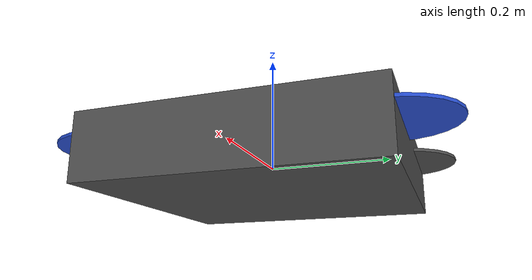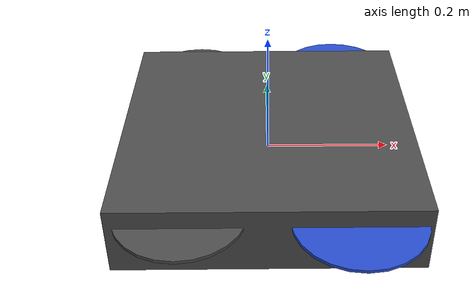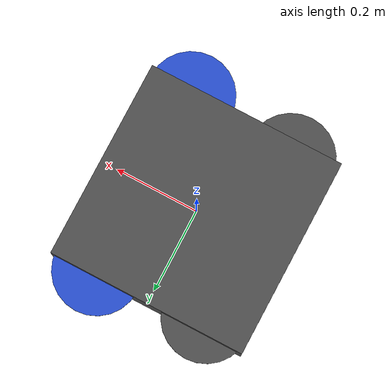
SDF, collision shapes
<?xml version='1.0'?>
<sdf version='1.5'>
  <model name='iris_fpv_cam'>

    <include>
      <uri>model://iris</uri>
    </include>

    <include>
      <uri>model://fpv_cam</uri>
      <pose>0 0 0 0 0 0</pose>
    </include>
    <joint name="fpv_cam_joint" type="fixed">
      <child>fpv_cam::link</child>
      <parent>iris::base_link</parent>
      <axis>
        <xyz>0 0 1</xyz>
        <limit>
          <upper>0</upper>
          <lower>0</lower>
        </limit>
      </axis>
    </joint>

  </model>
</sdf>

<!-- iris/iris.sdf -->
<sdf version='1.5'>
  <model name='iris'>
    <link name='base_link'>
      <pose>0 0 0 0 -0 0</pose>
      <inertial>
        <pose>0 0 0 0 -0 0</pose>
        <mass>1.5</mass>
        <inertia>
          <ixx>0.0347563</ixx>
          <ixy>0</ixy>
          <ixz>0</ixz>
          <iyy>0.0458929</iyy>
          <iyz>0</iyz>
          <izz>0.0977</izz>
        </inertia>
      </inertial>
      <collision name='base_link_collision'>
        <pose>0 0 0 0 -0 0</pose>
        <geometry>
          <box>
            <size>0.47 0.47 0.11</size>
          </box>
        </geometry>
        <surface>
          <contact>
            <ode/>
          </contact>
          <friction>
            <ode/>
          </friction>
        </surface>
      </collision>
      <visual name='base_link_visual'>
        <pose>0 0 0 0 -0 0</pose>
        <geometry>
          <mesh>
            <scale>1 1 1</scale>
            <uri>model://rotors_description/meshes/iris.dae</uri>
          </mesh>
        </geometry>
        <material>
          <script>
            <name>Gazebo/DarkGrey</name>
            <uri>__default__</uri>
          </script>
        </material>
      </visual>
      <gravity>1</gravity>
      <velocity_decay/>
      <self_collide>0</self_collide>
    </link>
    <link name='iris/imu_link'>
      <pose>0 0 0 0 -0 0</pose>
      <inertial>
        <pose>0 0 0 0 -0 0</pose>
        <mass>0.015</mass>
        <inertia>
          <ixx>1e-05</ixx>
          <ixy>0</ixy>
          <ixz>0</ixz>
          <iyy>1e-05</iyy>
          <iyz>0</iyz>
          <izz>1e-05</izz>
        </inertia>
      </inertial>
    </link>
    <joint name='iris/imu_joint' type='revolute'>
      <child>iris/imu_link</child>
      <parent>base_link</parent>
      <axis>
        <xyz>1 0 0</xyz>
        <limit>
          <lower>0</lower>
          <upper>0</upper>
          <effort>0</effort>
          <velocity>0</velocity>
        </limit>
        <dynamics>
          <spring_reference>0</spring_reference>
          <spring_stiffness>0</spring_stiffness>
        </dynamics>
        <use_parent_model_frame>1</use_parent_model_frame>
      </axis>
    </joint>
    <link name='rotor_0'>
      <pose>0.13 -0.22 0.023 0 -0 0</pose>
      <inertial>
        <pose>0 0 0 0 -0 0</pose>
        <mass>0.005</mass>
        <inertia>
          <ixx>9.75e-07</ixx>
          <ixy>0</ixy>
          <ixz>0</ixz>
          <iyy>0.000166704</iyy>
          <iyz>0</iyz>
          <izz>0.000167604</izz>
        </inertia>
      </inertial>
      <collision name='rotor_0_collision'>
        <pose>0 0 0 0 -0 0</pose>
        <geometry>
          <cylinder>
            <length>0.005</length>
            <radius>0.1</radius>
          </cylinder>
        </geometry>
        <surface>
          <contact>
            <ode/>
          </contact>
          <friction>
            <ode/>
          </friction>
        </surface>
      </collision>
      <visual name='rotor_0_visual'>
        <pose>0 0 0 0 -0 0</pose>
        <geometry>
          <mesh>
            <scale>1 1 1</scale>
            <uri>model://rotors_description/meshes/iris_prop_ccw.dae</uri>
          </mesh>
        </geometry>
        <material>
          <script>
            <name>Gazebo/Blue</name>
            <uri>__default__</uri>
          </script>
        </material>
      </visual>
      <gravity>1</gravity>
      <velocity_decay/>
      <self_collide>0</self_collide>
    </link>
    <joint name='rotor_0_joint' type='revolute'>
      <child>rotor_0</child>
      <parent>base_link</parent>
      <axis>
        <xyz>0 0 1</xyz>
        <limit>
          <lower>-1e+16</lower>
          <upper>1e+16</upper>
        </limit>
        <dynamics>
          <spring_reference>0</spring_reference>
          <spring_stiffness>0</spring_stiffness>
        </dynamics>
        <use_parent_model_frame>1</use_parent_model_frame>
      </axis>
    </joint>
    <link name='rotor_1'>
      <pose>-0.13 0.2 0.023 0 -0 0</pose>
      <inertial>
        <pose>0 0 0 0 -0 0</pose>
        <mass>0.005</mass>
        <inertia>
          <ixx>9.75e-07</ixx>
          <ixy>0</ixy>
          <ixz>0</ixz>
          <iyy>0.000166704</iyy>
          <iyz>0</iyz>
          <izz>0.000167604</izz>
        </inertia>
      </inertial>
      <collision name='rotor_1_collision'>
        <pose>0 0 0 0 -0 0</pose>
        <geometry>
          <cylinder>
            <length>0.005</length>
            <radius>0.1</radius>
          </cylinder>
        </geometry>
        <surface>
          <contact>
            <ode/>
          </contact>
          <friction>
            <ode/>
          </friction>
        </surface>
      </collision>
      <visual name='rotor_1_visual'>
        <pose>0 0 0 0 -0 0</pose>
        <geometry>
          <mesh>
            <scale>1 1 1</scale>
            <uri>model://rotors_description/meshes/iris_prop_ccw.dae</uri>
          </mesh>
        </geometry>
        <material>
          <script>
            <name>Gazebo/DarkGrey</name>
            <uri>__default__</uri>
          </script>
        </material>
      </visual>
      <gravity>1</gravity>
      <velocity_decay/>
      <self_collide>0</self_collide>
    </link>
    <joint name='rotor_1_joint' type='revolute'>
      <child>rotor_1</child>
      <parent>base_link</parent>
      <axis>
        <xyz>0 0 1</xyz>
        <limit>
          <lower>-1e+16</lower>
          <upper>1e+16</upper>
        </limit>
        <dynamics>
          <spring_reference>0</spring_reference>
          <spring_stiffness>0</spring_stiffness>
        </dynamics>
        <use_parent_model_frame>1</use_parent_model_frame>
      </axis>
    </joint>
    <link name='rotor_2'>
      <pose>0.13 0.22 0.023 0 -0 0</pose>
      <inertial>
        <pose>0 0 0 0 -0 0</pose>
        <mass>0.005</mass>
        <inertia>
          <ixx>9.75e-07</ixx>
          <ixy>0</ixy>
          <ixz>0</ixz>
          <iyy>0.000166704</iyy>
          <iyz>0</iyz>
          <izz>0.000167604</izz>
        </inertia>
      </inertial>
      <collision name='rotor_2_collision'>
        <pose>0 0 0 0 -0 0</pose>
        <geometry>
          <cylinder>
            <length>0.005</length>
            <radius>0.1</radius>
          </cylinder>
        </geometry>
        <surface>
          <contact>
            <ode/>
          </contact>
          <friction>
            <ode/>
          </friction>
        </surface>
      </collision>
      <visual name='rotor_2_visual'>
        <pose>0 0 0 0 -0 0</pose>
        <geometry>
          <mesh>
            <scale>1 1 1</scale>
            <uri>model://rotors_description/meshes/iris_prop_cw.dae</uri>
          </mesh>
        </geometry>
        <material>
          <script>
            <name>Gazebo/Blue</name>
            <uri>__default__</uri>
          </script>
        </material>
      </visual>
      <gravity>1</gravity>
      <velocity_decay/>
      <self_collide>0</self_collide>
    </link>
    <joint name='rotor_2_joint' type='revolute'>
      <child>rotor_2</child>
      <parent>base_link</parent>
      <axis>
        <xyz>0 0 1</xyz>
        <limit>
          <lower>-1e+16</lower>
          <upper>1e+16</upper>
        </limit>
        <dynamics>
          <spring_reference>0</spring_reference>
          <spring_stiffness>0</spring_stiffness>
        </dynamics>
        <use_parent_model_frame>1</use_parent_model_frame>
      </axis>
    </joint>
    <link name='rotor_3'>
      <pose>-0.13 -0.2 0.023 0 -0 0</pose>
      <inertial>
        <pose>0 0 0 0 -0 0</pose>
        <mass>0.005</mass>
        <inertia>
          <ixx>9.75e-07</ixx>
          <ixy>0</ixy>
          <ixz>0</ixz>
          <iyy>0.000166704</iyy>
          <iyz>0</iyz>
          <izz>0.000167604</izz>
        </inertia>
      </inertial>
      <collision name='rotor_3_collision'>
        <pose>0 0 0 0 -0 0</pose>
        <geometry>
          <cylinder>
            <length>0.005</length>
            <radius>0.1</radius>
          </cylinder>
        </geometry>
        <surface>
          <contact>
            <ode/>
          </contact>
          <friction>
            <ode/>
          </friction>
        </surface>
      </collision>
      <visual name='rotor_3_visual'>
        <pose>0 0 0 0 -0 0</pose>
        <geometry>
          <mesh>
            <scale>1 1 1</scale>
            <uri>model://rotors_description/meshes/iris_prop_cw.dae</uri>
          </mesh>
        </geometry>
        <material>
          <script>
            <name>Gazebo/DarkGrey</name>
            <uri>__default__</uri>
          </script>
        </material>
      </visual>
      <gravity>1</gravity>
      <velocity_decay/>
      <self_collide>0</self_collide>
    </link>
    <joint name='rotor_3_joint' type='revolute'>
      <child>rotor_3</child>
      <parent>base_link</parent>
      <axis>
        <xyz>0 0 1</xyz>
        <limit>
          <lower>-1e+16</lower>
          <upper>1e+16</upper>
        </limit>
        <dynamics>
          <spring_reference>0</spring_reference>
          <spring_stiffness>0</spring_stiffness>
        </dynamics>
        <use_parent_model_frame>1</use_parent_model_frame>
      </axis>
    </joint>
    <plugin name='rosbag' filename='librotors_gazebo_multirotor_base_plugin.so'>
      <linkName>base_link</linkName>
      <motorPubTopic>~/motors</motorPubTopic>
      <rotorVelocitySlowdownSim>10</rotorVelocitySlowdownSim>
    </plugin>
    <plugin name='front_right_motor_model' filename='librotors_gazebo_motor_model.so'>
      <jointName>rotor_0_joint</jointName>
      <linkName>rotor_0</linkName>
      <turningDirection>ccw</turningDirection>
      <timeConstantUp>0.0125</timeConstantUp>
      <timeConstantDown>0.025</timeConstantDown>
      <maxRotVelocity>838</maxRotVelocity>
      <motorConstant>8.54858e-06</motorConstant>
      <momentConstant>0.16</momentConstant>
      <motorNumber>0</motorNumber>
      <rotorDragCoefficient>8.06428e-05</rotorDragCoefficient>
      <rollingMomentCoefficient>1e-06</rollingMomentCoefficient>
      <commandSubTopic>~/command/motor_speed</commandSubTopic>
      <motorSpeedPubTopic>~/motor_speed/0</motorSpeedPubTopic>
      <rotorVelocitySlowdownSim>10</rotorVelocitySlowdownSim>
    </plugin>
    <plugin name='back_left_motor_model' filename='librotors_gazebo_motor_model.so'>
      <jointName>rotor_1_joint</jointName>
      <linkName>rotor_1</linkName>
      <turningDirection>ccw</turningDirection>
      <timeConstantUp>0.0125</timeConstantUp>
      <timeConstantDown>0.025</timeConstantDown>
      <maxRotVelocity>838</maxRotVelocity>
      <motorConstant>8.54858e-06</motorConstant>
      <momentConstant>0.16</momentConstant>
      <motorNumber>1</motorNumber>
      <rotorDragCoefficient>8.06428e-05</rotorDragCoefficient>
      <rollingMomentCoefficient>1e-06</rollingMomentCoefficient>
      <commandSubTopic>~/command/motor_speed</commandSubTopic>
      <motorSpeedPubTopic>~/motor_speed/1</motorSpeedPubTopic>
      <rotorVelocitySlowdownSim>10</rotorVelocitySlowdownSim>
    </plugin>
    <plugin name='front_left_motor_model' filename='librotors_gazebo_motor_model.so'>
      <jointName>rotor_2_joint</jointName>
      <linkName>rotor_2</linkName>
      <turningDirection>cw</turningDirection>
      <timeConstantUp>0.0125</timeConstantUp>
      <timeConstantDown>0.025</timeConstantDown>
      <maxRotVelocity>838</maxRotVelocity>
      <motorConstant>8.54858e-06</motorConstant>
      <momentConstant>0.16</momentConstant>
      <motorNumber>2</motorNumber>
      <rotorDragCoefficient>8.06428e-05</rotorDragCoefficient>
      <rollingMomentCoefficient>1e-06</rollingMomentCoefficient>
      <commandSubTopic>~/command/motor_speed</commandSubTopic>
      <motorSpeedPubTopic>~/motor_speed/2</motorSpeedPubTopic>
      <rotorVelocitySlowdownSim>10</rotorVelocitySlowdownSim>
    </plugin>
    <plugin name='back_right_motor_model' filename='librotors_gazebo_motor_model.so'>
      <jointName>rotor_3_joint</jointName>
      <linkName>rotor_3</linkName>
      <turningDirection>cw</turningDirection>
      <timeConstantUp>0.0125</timeConstantUp>
      <timeConstantDown>0.025</timeConstantDown>
      <maxRotVelocity>838</maxRotVelocity>
      <motorConstant>8.54858e-06</motorConstant>
      <momentConstant>0.16</momentConstant>
      <motorNumber>3</motorNumber>
      <rotorDragCoefficient>8.06428e-05</rotorDragCoefficient>
      <rollingMomentCoefficient>1e-06</rollingMomentCoefficient>
      <commandSubTopic>~/command/motor_speed</commandSubTopic>
      <motorSpeedPubTopic>~/motor_speed/3</motorSpeedPubTopic>
      <rotorVelocitySlowdownSim>10</rotorVelocitySlowdownSim>
    </plugin>
    <plugin name='mavlink_interface' filename='librotors_gazebo_mavlink_interface.so'>
      <imuSubTopic>~/imu</imuSubTopic>
      <motorSpeedCommandPubTopic>~/command/motor_speed</motorSpeedCommandPubTopic>
      <udpPort>14560</udpPort>
      <udpPort2>14556</udpPort2>
      <portStep>10</portStep>
    </plugin>
    <static>0</static>
    <plugin name='rotors_gazebo_imu_plugin' filename='librotors_gazebo_imu_plugin.so'>
      <linkName>iris/imu_link</linkName>
      <imuTopic>~/imu</imuTopic>
      <gyroscopeNoiseDensity>0.0003394</gyroscopeNoiseDensity>
      <gyroscopeRandomWalk>3.8785e-05</gyroscopeRandomWalk>
      <gyroscopeBiasCorrelationTime>1000.0</gyroscopeBiasCorrelationTime>
      <gyroscopeTurnOnBiasSigma>0.0087</gyroscopeTurnOnBiasSigma>
      <accelerometerNoiseDensity>0.004</accelerometerNoiseDensity>
      <accelerometerRandomWalk>0.006</accelerometerRandomWalk>
      <accelerometerBiasCorrelationTime>300.0</accelerometerBiasCorrelationTime>
      <accelerometerTurnOnBiasSigma>0.196</accelerometerTurnOnBiasSigma>
    </plugin>
  </model>
</sdf>

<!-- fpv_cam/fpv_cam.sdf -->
<sdf version='1.6'>
    <model name='fpv_cam'>
    <pose>-0.158979 -0.04405 0.045074 0 -0 0</pose>
      <link name='link'>
        <inertial>
          <mass>0.015</mass>
          <inertia>
            <ixx>4.15e-6</ixx>
          <ixy>0</ixy>
          <ixz>0</ixz>
          <iyy>2.407e-6</iyy>
          <iyz>0</iyz>
          <izz>2.407e-6</izz>
          </inertia>
        </inertial>
        <collision name='collision'>
          <geometry>
            <box>
              <size>0.01 0.01 0.01</size>
            </box>
          </geometry>
          <max_contacts>10</max_contacts>
          <surface>
            <contact>
              <ode/>
            </contact>
            <bounce/>
            <friction>
              <ode/>
            </friction>
          </surface>
        </collision>
        <visual name='visual'>
          <geometry>
            <box>
              <size>0.01 0.01 0.01</size>
            </box>
          </geometry>
        </visual>
        <sensor name='camera' type='camera'>
          <camera name='__default__'>
            <horizontal_fov>1.047</horizontal_fov>
            <image>
              <width>320</width>
              <height>240</height>
            </image>
            <clip>
              <near>0.1</near>
              <far>100</far>
            </clip>
            <lens>
              <type>custom</type>
              <custom_function>
                <c1>1.05</c1>
                <c2>4</c2>
                <f>1</f>
                <fun>tan</fun>
              </custom_function>
              <scale_to_hfov>1</scale_to_hfov>
              <cutoff_angle>3.1415</cutoff_angle>
              <env_texture_size>1080</env_texture_size>
            </lens>
          </camera>
          <always_on>1</always_on>
          <update_rate>30</update_rate>
          <visualize>1</visualize>
          <plugin name='camera_plugin' filename='libgazebo_ros_camera.so'>
              <robotNamespace></robotNamespace>
            <alwaysOn>true</alwaysOn>
            <imageTopicName>image_raw</imageTopicName>
            <cameraInfoTopicName>camera_info</cameraInfoTopicName>
            <updateRate>30.0</updateRate>
            <cameraName>usb_cam/camera</cameraName>
            <frameName>/robot_camera_link</frameName>
            <CxPrime>320.5</CxPrime>
            <Cx>320.5</Cx>
            <Cy>240.5</Cy>
            <hackBaseline>0</hackBaseline>
            <focalLength>277.191356</focalLength>
            <distortionK1>0.0</distortionK1>
            <distortionK2>0.0</distortionK2>
            <distortionK3>0.0</distortionK3>
            <distortionT1>0.0</distortionT1>
            <distortionT2>0.0</distortionT2>
          </plugin>
          <!-- GStreamer camera plugin (needs a lot of CPU! Consider lowering the
             camera image size) -->
          <plugin name="GstCameraPlugin" filename="libgazebo_gst_camera_plugin.so">
            <robotNamespace></robotNamespace>
            <udpPort>5600</udpPort>
          </plugin>
        </sensor>
        <self_collide>0</self_collide>
        <kinematic>0</kinematic>
      </link>
  </model>
</sdf>
